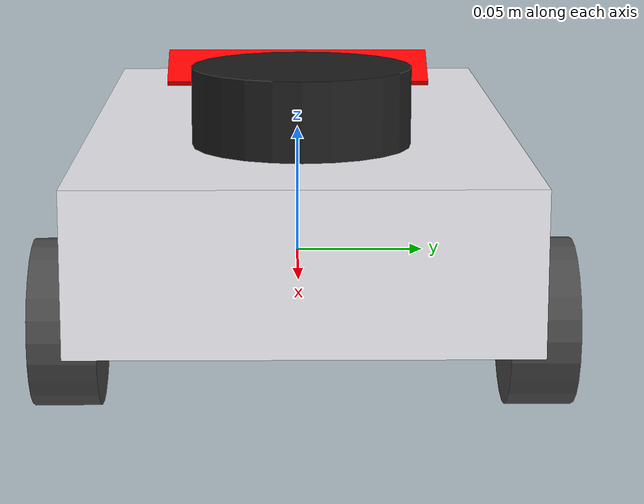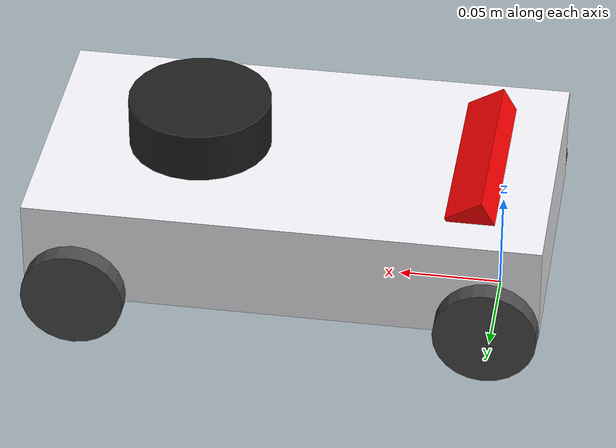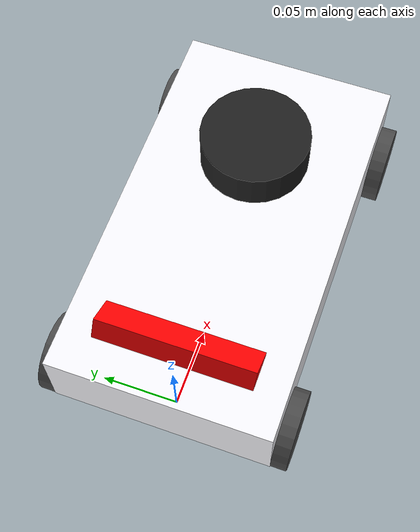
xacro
<?xml version="1.0"?>
<robot name="hhbot" xmlns:xacro="http://www.ros.org/wiki/xacro">

    <xacro:include filename="$(find hhbot_description)/urdf/hhbot_body.urdf.xacro" />
    <xacro:include filename="$(find hhbot_description)/urdf/rplidar.xacro" />

    <xacro:property name="rplidar_offset_x" value="0.05" />
    <xacro:property name="rplidar_offset_y" value="0" />

    <!-- Body of hhbot -->
    <hhbot_body/>

    <!-- laser of hhbot -->
    <joint name="rplidar_joint" type="fixed">
        <origin xyz="${rplidar_offset_x} ${rplidar_offset_y} ${base_link_height/2+0.02}"
                rpy="0 0 0" />
        <parent link="base_link"/>
        <child link="laser_link"/>
    </joint>

    <xacro:rplidar prefix="laser"/>

</robot>

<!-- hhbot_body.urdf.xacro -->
<robot name="hhbot_body" xmlns:xacro="http://www.ros.org/wiki/xacro">

    <!-- Defining the colors -->
    <material name="Black">
        <color rgba="0.29 0.29 0.29 1"/>
    </material>

    <material name="White">
        <color rgba="0.96 0.96 0.98 1"/>
    </material>

    <material name="Red">
        <color rgba="1 0 0 1"/>
    </material>

    <!-- PROPERTY LIST -->
    <!-- All units in m-kg-s-radians unit system -->
    <xacro:property name="H_PI" value="3.1415926535897931" />

    <!-- Main body length, width, height and mass -->
    <xacro:property name="base_mass"        value="0.3" />
    <xacro:property name="base_link_length" value="0.25" />
    <xacro:property name="base_link_width"  value="0.14" />
    <xacro:property name="base_link_height" value="0.05"/>

    <!-- Wheel radius, height, centre and mass -->
    <xacro:property name="wheel_mass"   value="0.1" />
    <xacro:property name="wheel_radius" value="0.025" />
    <xacro:property name="wheel_length" value="0.02" />
    <xacro:property name="wheel_centre" value="0.005" />

    <!-- tail length, width, height, y and radian -->
    <xacro:property name="tail_width"  value="0.02" />
    <xacro:property name="tail_length" value="0.1" />
    <xacro:property name="tail_height" value="0.02" />
    <xacro:property name="tail_x"      value="-0.09" />
    <xacro:property name="tail_radian" value="-1.0472" />

    <!-- Macro for inertia matrix -->
    <xacro:macro name="sphere_inertial_matrix" params="m r">
        <inertial>
            <mass value="${m}" />
            <inertia ixx="${2*m*r*r/5}" ixy="0" ixz="0"
                     iyy="${2*m*r*r/5}" iyz="0"
                     izz="${2*m*r*r/5}" />
        </inertial>
    </xacro:macro>

    <xacro:macro name="cylinder_inertial_matrix" params="m r h">
        <inertial>
            <mass value="${m}" />
            <inertia ixx="${m*(3*r*r+h*h)/12}" ixy = "0" ixz = "0"
                     iyy="${m*(3*r*r+h*h)/12}" iyz = "0"
                     izz="${m*r*r/2}" />
        </inertial>
    </xacro:macro>

    <xacro:macro name="box_inertial_matrix" params="m w h d">
        <inertial>
            <mass value="${m}" />
            <inertia ixx="${m*(h*h+d*d)/12}" ixy = "0" ixz = "0"
                     iyy="${m*(w*w+d*d)/12}" iyz = "0"
                     izz="${m*(w*w+h*h)/12}" />
        </inertial>
    </xacro:macro>

    <!-- Macro for wheel -->
    <xacro:macro name="wheel" params="lr fb">
        <!-- lr: left, right , fb: front, back -->
        <link name="${lr}_${fb}_wheel_link">
            <visual>
                <origin xyz="0 0 0" rpy="0 0 0" />
                <geometry>
                    <cylinder length="${wheel_length}" radius="${wheel_radius}" />
                </geometry>
                <material name="Black" />
            </visual>
            <collision>
                <origin xyz="0 0 0" rpy="0 0 0" />
                <geometry>
                    <cylinder length="${wheel_length}" radius="${wheel_radius}" />
                </geometry>
            </collision>
            <cylinder_inertial_matrix m="${wheel_mass}"
                                      r="${wheel_radius}"
                                      h="${wheel_length}" />
        </link>

        <xacro:property name="sign_fb" value="-1.0" />
        <xacro:if value="${fb == 'front'}">
	        <xacro:property name="sign_fb" value="1.0" />
        </xacro:if>

        <xacro:property name="sign_lr" value="-1.0" />
        <xacro:if value="${lr == 'left'}">
	        <xacro:property name="sign_lr" value="1.0" />
        </xacro:if>

        <joint name="${lr}_${fb}_wheel_joint" type="continuous">
            <axis xyz="0 0 ${sign_lr}" rpy="0 0 0" />
            <parent link="base_link" />
            <child link="${lr}_${fb}_wheel_link" />
            <origin xyz="${sign_fb*(base_link_length/2-wheel_radius)}
                         ${sign_lr*base_link_width/2}
                         ${wheel_centre-wheel_radius}"
                    rpy="${-H_PI/2} 0 0" />
        </joint>
    </xacro:macro>

    <!-- Macro for tail -->
    <xacro:macro name="tail">
        <link name="tail_link">
            <visual>
                <geometry>
                    <box size="${tail_width} ${tail_length} ${tail_height}"/>
                </geometry>
                <material name="Red"/>
            </visual>
        </link>

        <joint name="tail_joint" type="fixed">
            <parent link="base_link"/>
            <child link="tail_link"/>
            <origin rpy="0 ${tail_radian} 0" xyz="${tail_x} 0 ${base_link_height/2-0.002}"/>
        </joint>
    </xacro:macro>

    <!-- BASE-FOOTPRINT -->
    <!-- base_footprint is a fictitious link(frame) that is on the ground right below base_link origin -->
    <xacro:macro name="hhbot_body">
        <link name="base_footprint">
            <visual>
                <origin xyz="0 0 0" rpy="0 0 0 " />
                <geometry>
                    <box size="0.001 0.001 0.001" />
                </geometry>
            </visual>
        </link>

         <joint name="base_footprint_joint" type="fixed">
            <origin xyz="${base_link_length/2-wheel_radius}
                         0
                         ${base_link_height/2+wheel_radius-wheel_centre}" rpy="0 0 0" />
            <parent link="base_footprint"/>
            <child link="base_link" />
        </joint>

        <!-- BASE-LINK -->
        <!--Actual body/chassis of the robot-->
        <link name="base_link">
            <visual>
                <origin xyz=" 0 0 0" rpy="0 0 0" />
                <geometry>
                    <box size="${base_link_length} ${base_link_width} ${base_link_height}" />
                </geometry>
                <material name="White" />
            </visual>

            <collision>
                <origin xyz="0 0 0" rpy="0 0 0" />
                <geometry>
                    <box size="${base_link_length} ${base_link_width} ${base_link_height}" />
                </geometry>
            </collision>

            <box_inertial_matrix  m="${base_mass}"
                                  w="${base_link_width}"
                                  h="${base_link_height}"
                                  d="${base_link_length}" />
        </link>

        <!-- Wheel Definitions -->
        <wheel lr="left"  fb="front" />
        <wheel lr="left"  fb="back" />
        <wheel lr="right" fb="front" />
        <wheel lr="right" fb="back" />

        <!-- Tail Definitions -->
        <tail/>

    </xacro:macro>
</robot>

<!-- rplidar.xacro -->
<robot xmlns:xacro="http://www.ros.org/wiki/xacro" name="laser">

    <xacro:macro name="rplidar" params="prefix:=laser">
        <!-- Create laser reference frame -->
        <link name="${prefix}_link">
            <inertial>
                <mass value="0.1" />
                <origin xyz="0 0 0" />
                <inertia ixx="0.01" ixy="0.0" ixz="0.0"
                         iyy="0.01" iyz="0.0" izz="0.01" />
            </inertial>

            <visual>
                <origin xyz=" 0 0 -0.01 " rpy="0 0 0" />
                <geometry>
                    <cylinder length="0.03" radius="0.035"/>
                </geometry>
                <material name="black"/>
            </visual>

            <collision>
                <origin xyz="0.0 0.0 0.0" rpy="0 0 0" />
                <geometry>
                    <cylinder length="0.03" radius="0.035"/>
                </geometry>
            </collision>
        </link>
    </xacro:macro>

</robot>
